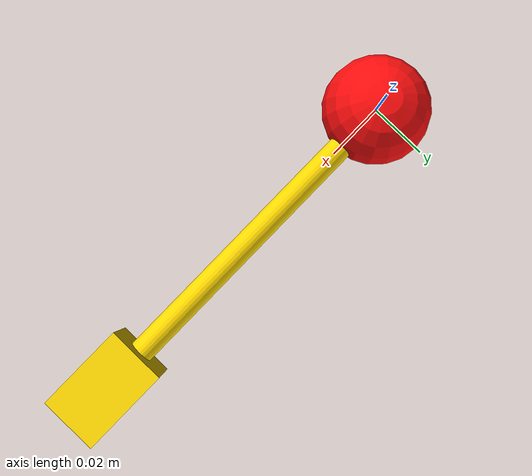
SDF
<?xml version="1.0"?>
<sdf version="1.7">
  <!-- Visual-only marker: no collision and no physical interaction. -->
  <model name="disturbance_marker">
    <static>true</static>

    <link name="marker_link">
      <visual name="point">
        <geometry>
          <sphere>
            <radius>0.018</radius>
          </sphere>
        </geometry>
        <material>
          <ambient>1.0 0.05 0.05 1.0</ambient>
          <diffuse>1.0 0.05 0.05 1.0</diffuse>
          <emissive>0.4 0.0 0.0 1.0</emissive>
        </material>
      </visual>

      <!-- Yellow indicator for configured +X direction. -->
      <visual name="direction_shaft">
        <pose>0.065 0 0 0 1.57079632679 0</pose>
        <geometry>
          <cylinder>
            <radius>0.004</radius>
            <length>0.10</length>
          </cylinder>
        </geometry>
        <material>
          <ambient>1.0 0.85 0.0 1.0</ambient>
          <diffuse>1.0 0.85 0.0 1.0</diffuse>
          <emissive>0.3 0.2 0.0 1.0</emissive>
        </material>
      </visual>

      <visual name="direction_tip">
        <pose>0.125 0 0 0 0 0</pose>
        <geometry>
          <box>
            <size>0.030 0.020 0.020</size>
          </box>
        </geometry>
        <material>
          <ambient>1.0 0.85 0.0 1.0</ambient>
          <diffuse>1.0 0.85 0.0 1.0</diffuse>
          <emissive>0.3 0.2 0.0 1.0</emissive>
        </material>
      </visual>
    </link>
  </model>
</sdf>
